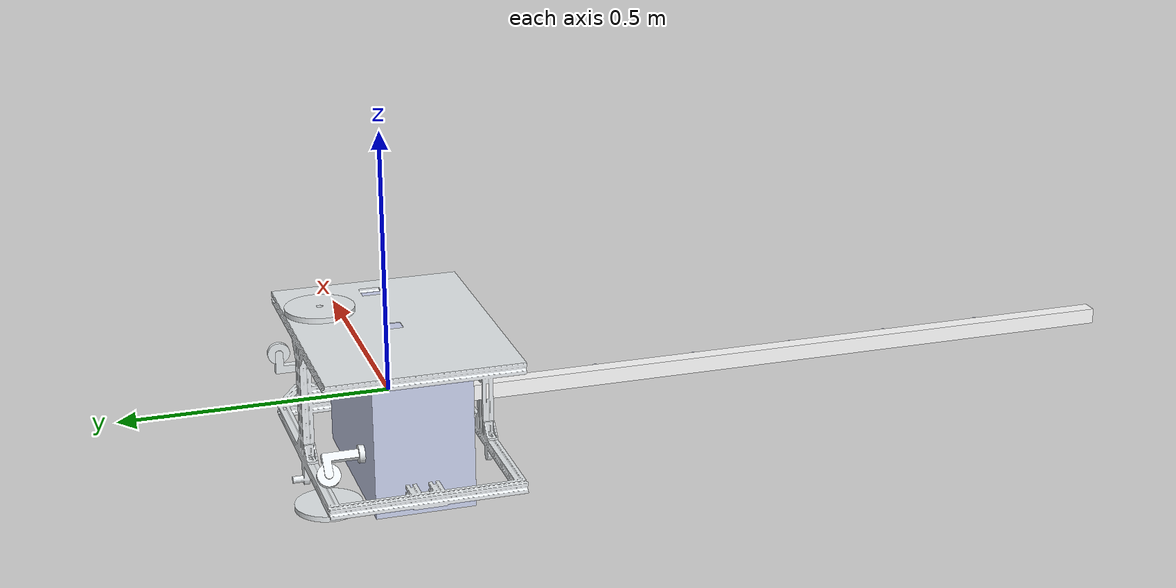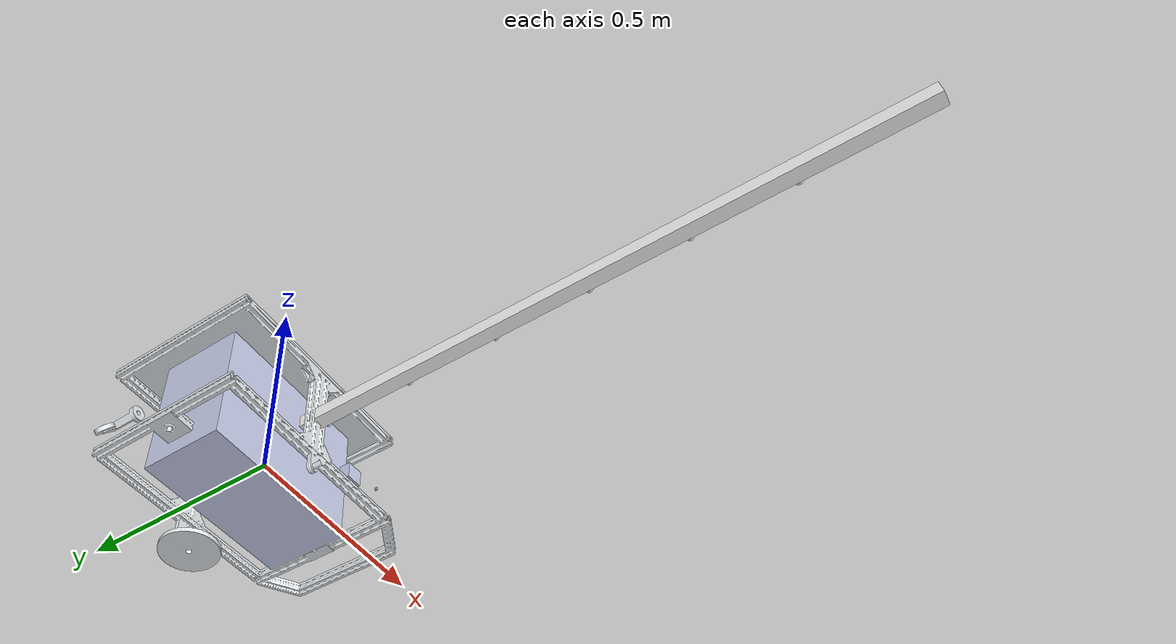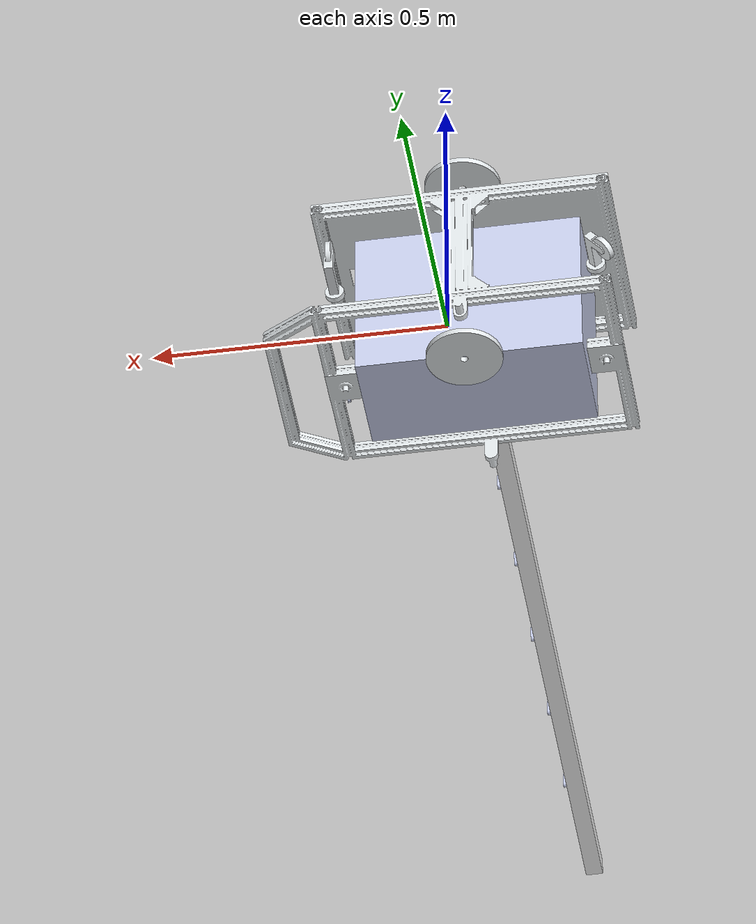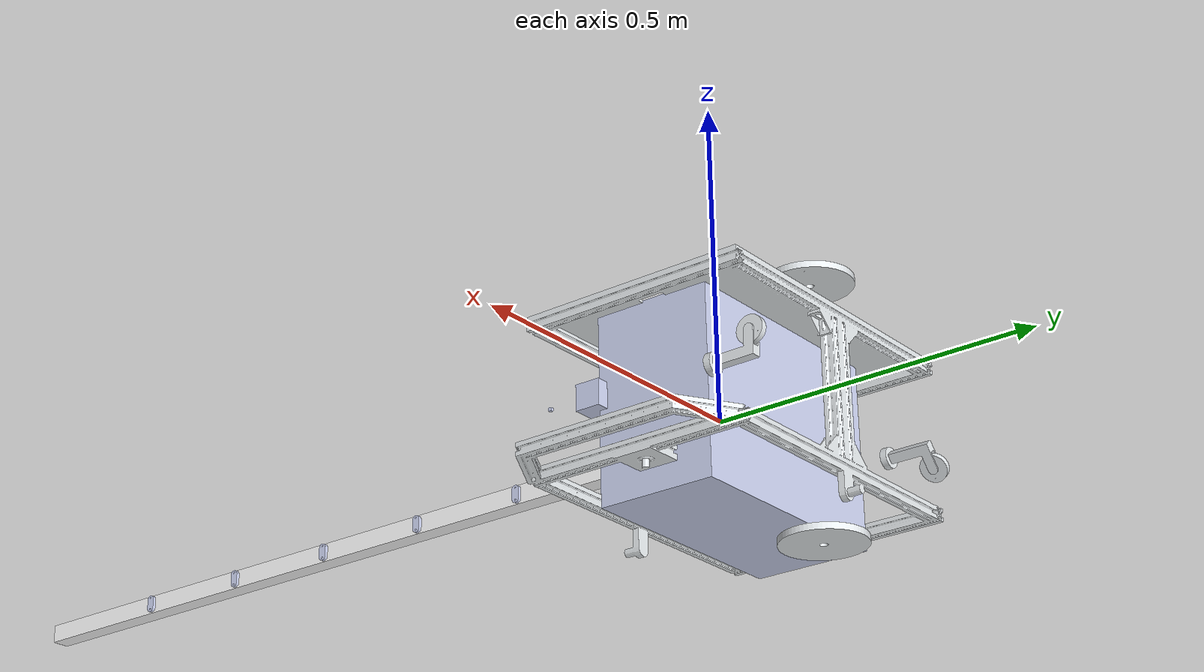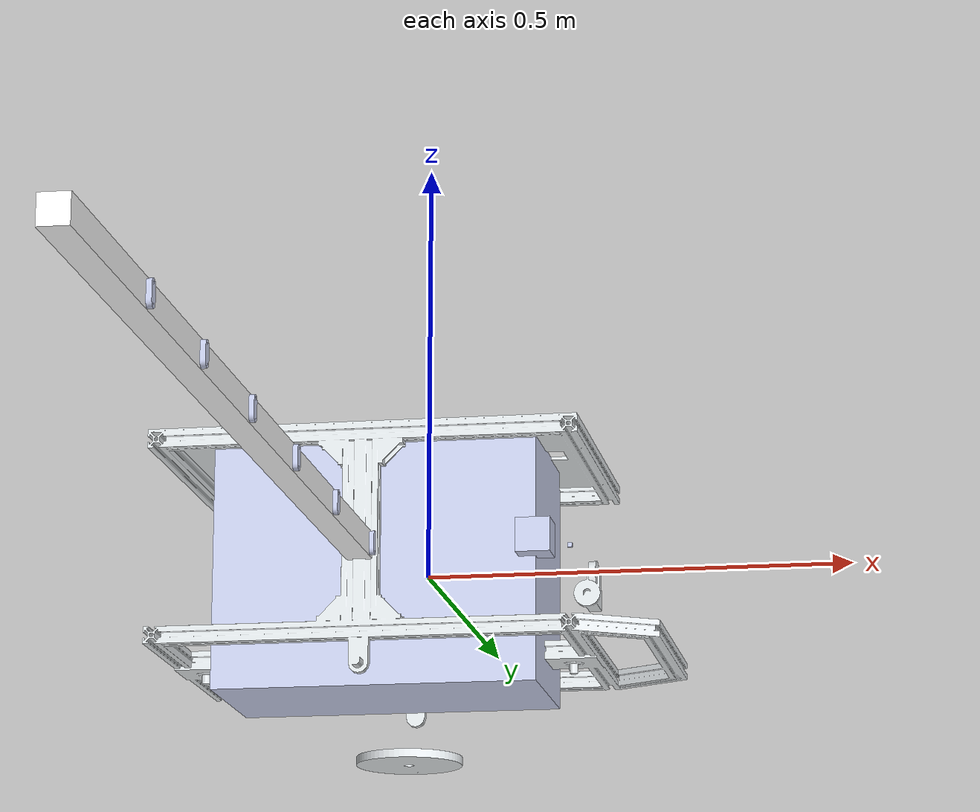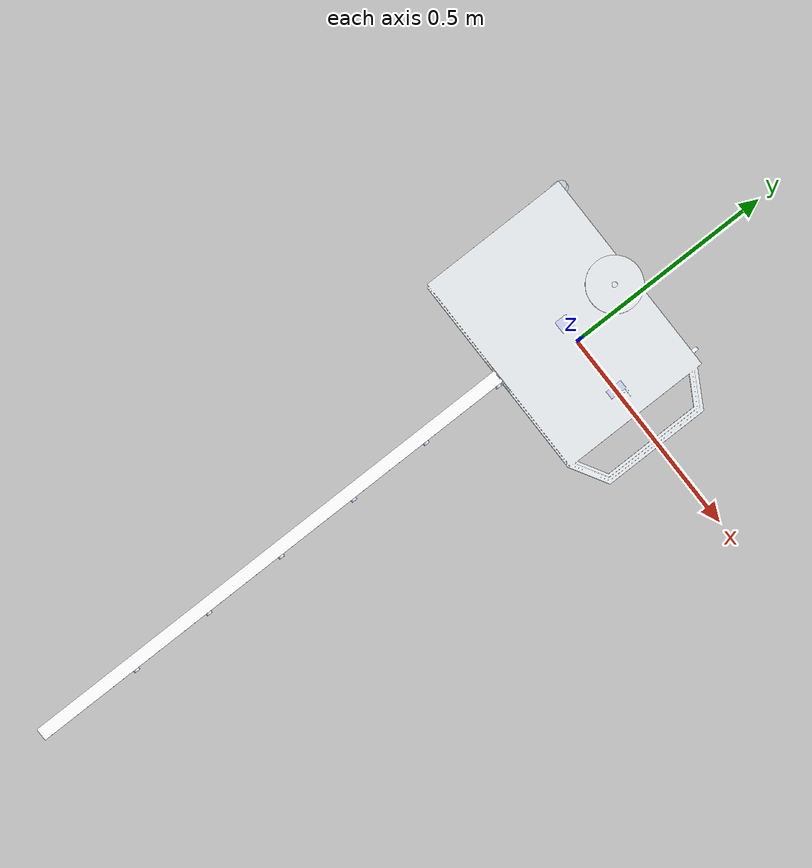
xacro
<?xml version='1.0'?>

<robot   name="GazeboV1" xmlns:xacro="http://www.ros.org/wiki/xacro">

  <xacro:include filename="$(find GazeboV0)/urdf/UVbot.gazebo" />
  <xacro:include filename="$(find GazeboV0)/urdf/macros.xacro" />
  <xacro:include filename="$(find GazeboV0)/urdf/materials.xacro" />
  <link
    name="Chassis">
    <inertial>
      <origin
        xyz="-0.034432 -0.049783 -0.0017009"
        rpy="0 0 0" />
      <mass
        value="4.6813" />
      <inertia
        ixx="0.13093"
        ixy="-0.010187"
        ixz="-1.0878E-07"
        iyy="0.19442"
        iyz="-6.3597E-06"
        izz="0.18221" />
    </inertial>
    <visual>
      <origin
        xyz="0 0 0"
        rpy="0 0 0" />
      <geometry>
        <mesh
          filename="package://GazeboV0/meshes/Chassis.STL" />
      </geometry>
      <material
        name="">
        <color
          rgba="0.89804 0.91765 0.92941 1" />
      </material>
    </visual>
    <collision>
      <origin
        xyz="0 0 0"
        rpy="0 0 0" />
      <geometry>
        <mesh
          filename="package://GazeboV0/meshes/Chassis.STL" />
      </geometry>
    </collision>
  </link>
  <link
    name="RightWheel">
    <inertial>
      <origin
        xyz="1.6653E-16 -2.0817E-17 0.0051"
        rpy="0 0 0" />
      <mass
        value="0.33861" />
      <inertia
        ixx="0.00034758"
        ixy="-7.2847E-20"
        ixz="9.6809E-18"
        iyy="0.00034758"
        iyz="4.2043E-19"
        izz="0.00068952" />
    </inertial>
    <visual>
      <origin
        xyz="0 0 0"
        rpy="0 0 0" />
      <geometry>
        <mesh
          filename="package://GazeboV0/meshes/RightWheel.STL" />
      </geometry>
      <material
        name="">
        <color
          rgba="0.89804 0.91765 0.92941 1" />
      </material>
    </visual>
    <collision>
      <origin
        xyz="0 0 0"
        rpy="0 0 0" />
      <geometry>
        <mesh
          filename="package://GazeboV0/meshes/RightWheel.STL" />
      </geometry>
    </collision>
  </link>
  <joint
    name="RightRevolute"
    type="continuous">
    <origin
      xyz="-0.0464879186474883 0.13117170540085 -0.191028392468994"
      rpy="3.14159265358979 0 1.5707963267949" />
    <parent
      link="Chassis" />
    <child
      link="RightWheel" />
    <axis
      xyz="0 0 1" />
    <dynamics
      damping="0"
      friction="0" />
  </joint>
  <link
    name="LeftWheel">
    <inertial>
      <origin
        xyz="-6.93889390390723E-17 -5.55111512312578E-17 -0.00510000000000457"
        rpy="0 0 0" />
      <mass
        value="0.338614058747035" />
      <inertia
        ixx="0.000347581051317554"
        ixy="0"
        ixz="5.18653076214745E-18"
        iyy="0.000347581051317554"
        iyz="2.0942724352016E-18"
        izz="0.000689518301963574" />
    </inertial>
    <visual>
      <origin
        xyz="0 0 0"
        rpy="0 0 0" />
      <geometry>
        <mesh
          filename="package://GazeboV0/meshes/LeftWheel.STL" />
      </geometry>
      <material
        name="">
        <color
          rgba="0.898039215686275 0.917647058823529 0.929411764705882 1" />
      </material>
    </visual>
    <collision>
      <origin
        xyz="0 0 0"
        rpy="0 0 0" />
      <geometry>
        <mesh
          filename="package://GazeboV0/meshes/LeftWheel.STL" />
      </geometry>
    </collision>
  </link>
  <joint
    name="LeftRevolute"
    type="continuous">
    <origin
      xyz="-0.0464879186474897 0.131171705400839 0.188167736746003"
      rpy="-3.14159265358976 0 0.415802035717092" />
    <parent
      link="Chassis" />
    <child
      link="LeftWheel" />
    <axis
      xyz="0 0 1" />
    <dynamics
      damping="0"
      friction="0" />
  </joint>
  <link
    name="FrontCastor">
    <inertial>
      <origin
        xyz="0.0030314 0.034563 -2.7756E-17"
        rpy="0 0 0" />
      <mass
        value="0.067153" />
      <inertia
        ixx="4.4926E-05"
        ixy="-6.705E-06"
        ixz="5.9566E-21"
        iyy="9.6191E-06"
        iyz="1.5989E-20"
        izz="4.9799E-05" />
    </inertial>
    <visual>
      <origin
        xyz="0 0 0"
        rpy="0 0 0" />
      <geometry>
        <mesh
          filename="package://GazeboV0/meshes/FrontCastor.STL" />
      </geometry>
      <material
        name="">
        <color
          rgba="0.89804 0.91765 0.92941 1" />
      </material>
    </visual>
    <collision>
      <origin
        xyz="0 0 0"
        rpy="0 0 0" />
      <geometry>
        <mesh
          filename="package://GazeboV0/meshes/FrontCastor.STL" />
      </geometry>
    </collision>
  </link>
  <joint
    name="FrontCastorRevolute"
    type="continuous">
    <origin
      xyz="0.17263668098028 0.106171705400847 -0.00173226325399095"
      rpy="3.14159265358979 -1.54598030035848 3.14159265358979" />
    <parent
      link="Chassis" />
    <child
      link="FrontCastor" />
    <axis
      xyz="0 1 0" />
    <dynamics
      damping="0"
      friction="0" />
  </joint>
  <link
    name="FrontCastorWheel">
    <inertial>
      <origin
        xyz="-1.38777878078145E-17 0 -6.38378239159465E-16"
        rpy="0 0 0" />
      <mass
        value="0.0317645176567402" />
      <inertia
        ixx="3.91504603938205E-06"
        ixy="4.2351647362715E-22"
        ixz="4.823176348906E-21"
        iyy="3.91504603938205E-06"
        iyz="-3.90529550879625E-21"
        izz="7.40108172021949E-06" />
    </inertial>
    <visual>
      <origin
        xyz="0 0 0"
        rpy="0 0 0" />
      <geometry>
        <mesh
          filename="package://GazeboV0/meshes/FrontCastorWheel.STL" />
      </geometry>
      <material
        name="">
        <color
          rgba="0.898039215686275 0.917647058823529 0.929411764705882 1" />
      </material>
    </visual>
    <collision>
      <origin
        xyz="0 0 0"
        rpy="0 0 0" />
      <geometry>
        <mesh
          filename="package://GazeboV0/meshes/FrontCastorWheel.STL" />
      </geometry>
    </collision>
  </link>
  <joint
    name="FrontCastorWheelRevolute"
    type="continuous">
    <origin
      xyz="0.0320000000000025 0.0674999999999988 0"
      rpy="0 0 -2.72865613261179" />
    <parent
      link="FrontCastor" />
    <child
      link="FrontCastorWheel" />
    <axis
      xyz="0 0 1" />
    <dynamics
      damping="0"
      friction="0" />
  </joint>
  <link
    name="RearCastor">
    <inertial>
      <origin
        xyz="0.00303144893180135 0.0345627416364439 2.77555756156289E-17"
        rpy="0 0 0" />
      <mass
        value="0.0671525104446696" />
      <inertia
        ixx="4.49259698602978E-05"
        ixy="-6.70501812215977E-06"
        ixz="2.83273439653558E-21"
        iyy="9.61913985679222E-06"
        iyz="-6.97283315371065E-21"
        izz="4.97992078191438E-05" />
    </inertial>
    <visual>
      <origin
        xyz="0 0 0"
        rpy="0 0 0" />
      <geometry>
        <mesh
          filename="package://GazeboV0/meshes/RearCastor.STL" />
      </geometry>
      <material
        name="">
        <color
          rgba="0.898039215686275 0.917647058823529 0.929411764705882 1" />
      </material>
    </visual>
    <collision>
      <origin
        xyz="0 0 0"
        rpy="0 0 0" />
      <geometry>
        <mesh
          filename="package://GazeboV0/meshes/RearCastor.STL" />
      </geometry>
    </collision>
  </link>
  <joint
    name="RearCastorRevolute"
    type="continuous">
    <origin
      xyz="-0.265612518275258 0.106171705400852 -0.00173226325399275"
      rpy="3.14159265358978 0.863215800991521 -3.14159265358979" />
    <parent
      link="Chassis" />
    <child
      link="RearCastor" />
    <axis
      xyz="0 1 0" />
    <dynamics
      damping="0"
      friction="0" />
  </joint>
  <link
    name="RearCastorWheel">
    <inertial>
      <origin
        xyz="0 -2.7756E-17 -1.3878E-16"
        rpy="0 0 0" />
      <mass
        value="0.031765" />
      <inertia
        ixx="3.915E-06"
        ixy="-1.0588E-22"
        ixz="2.54E-21"
        iyy="3.915E-06"
        iyz="7.4698E-22"
        izz="7.4011E-06" />
    </inertial>
    <visual>
      <origin
        xyz="0 0 0"
        rpy="0 0 0" />
      <geometry>
        <mesh
          filename="package://GazeboV0/meshes/RearCastorWheel.STL" />
      </geometry>
      <material
        name="">
        <color
          rgba="0.89804 0.91765 0.92941 1" />
      </material>
    </visual>
    <collision>
      <origin
        xyz="0 0 0"
        rpy="0 0 0" />
      <geometry>
        <mesh
          filename="package://GazeboV0/meshes/RearCastorWheel.STL" />
      </geometry>
    </collision>
  </link>
  <joint
    name="RearCastorWheelRevolute"
    type="continuous">
    <origin
      xyz="0.0319999999999975 0.0675000000000008 0"
      rpy="0 0 1.29966071100025" />
    <parent
      link="RearCastor" />
    <child
      link="RearCastorWheel" />
    <axis
      xyz="0 0 1" />
    <dynamics
      damping="0"
      friction="0" />
  </joint>
  <link
    name="Battery">
    <inertial>
      <origin
        xyz="6.8695E-16 0.0925 -7.5677E-17"
        rpy="0 0 0" />
      <mass
        value="17.512" />
      <inertia
        ixx="0.17268"
        ixy="1.0974E-15"
        ixz="6.6121E-16"
        iyy="0.33347"
        iyz="3.2497E-17"
        izz="0.26068" />
    </inertial>
    <visual>
      <origin
        xyz="0 0 0"
        rpy="0 0 0" />
      <geometry>
        <mesh
          filename="package://GazeboV0/meshes/Battery.STL" />
      </geometry>
      <material
        name="">
        <color
          rgba="0.79216 0.81961 0.93333 1" />
      </material>
    </visual>
    <collision>
      <origin
        xyz="0 0 0"
        rpy="0 0 0" />
      <geometry>
        <mesh
          filename="package://GazeboV0/meshes/Battery.STL" />
      </geometry>
    </collision>
  </link>
  <joint
    name="Fixed_Chassis_Battery"
    type="fixed">
    <origin
      xyz="-0.0464879186474911 -0.102828294599153 -0.00143226325399549"
      rpy="0 0 0" />
    <parent
      link="Chassis" />
    <child
      link="Battery" />
    <axis
      xyz="0 0 0" />
  </joint>

  <link name="LiDAR">
    <inertial>
      <origin
        xyz="0 0.0204 2.6021E-18"
        rpy="0 0 0" />
      <mass
        value="0.18025" />
      <inertia
        ixx="8.8373E-05"
        ixy="-2.6647E-37"
        ixz="-1.7334E-53"
        iyy="0.00012674"
        iyz="2.4957E-21"
        izz="8.8373E-05" />
    </inertial>
    <visual>
      <origin
        xyz="0 0 0"
        rpy="0 0 0" />
      <geometry>
        <mesh
          filename="package://GazeboV0/meshes/LiDAR.STL" />
      </geometry>
      <material
        name="">
        <color
          rgba="0.79216 0.81961 0.93333 1" />
      </material>
    </visual>
    <collision>
      <origin
        xyz="0 0 0"
        rpy="0 0 0" />
      <geometry>
        <mesh
          filename="package://GazeboV0/meshes/LiDAR.STL" />
      </geometry>
    </collision>
  </link>

  <joint name="Fixed_Battery_LiDAR" type="fixed">
    <origin
      xyz="0.143512081352509 -0.109028294599157 -0.00173226325399941"
      rpy="-1.57 -3.14 -3.14" />
    <parent link="Chassis" />
    <child link="LiDAR" />
    <axis
      xyz="0 0 1" />
  </joint>

  <link
    name="WoodRod"> <!--comment-->
    <inertial>
      <origin
        xyz="1.0842E-18 -5.1576E-06 0.25004"
        rpy="0 0 0" />
      <mass
        value="0.70171" />
      <inertia
        ixx="0.098881"
        ixy="-1.9823E-21"
        ixz="-8.8385E-20"
        iyy="0.098881"
        iyz="-3.6206E-07"
        izz="0.00010523" />
    </inertial>
    <visual>
      <origin
        xyz="0 0 0"
        rpy="0 0 0" />
      <geometry>
        <mesh
          filename="package://GazeboV0/meshes/WoodRod.STL" />
      </geometry>
      <material
        name="">
        <color
          rgba="1 1 1 1" />
      </material>
    </visual>
    <collision>
      <origin
        xyz="0 0 0"
        rpy="0 0 0" />
      <geometry>
        <mesh
          filename="package://GazeboV0/meshes/WoodRod.STL" />
      </geometry>
    </collision>
  </link>

  <joint    name="Fixed_Chassis_WoodRod"
    type="fixed">
    <origin
      xyz="-0.046487918647492 -0.14582829459916 -0.00173226325399934"
      rpy="1.5707963267949 -4.71 0" />
    <parent      link="Chassis" />
    <child
      link="WoodRod" />
    <axis
      xyz="0 0 0" />
  </joint>

  <link
    name="TBS1">
    <inertial>
      <origin
        xyz="-6.5052E-19 0 0.00275"
        rpy="0 0 0" />
      <mass
        value="0.0017387" />
      <inertia
        ixx="2.8124E-08"
        ixy="1.4974E-24"
        ixz="-6.7324E-24"
        iyy="9.5796E-08"
        iyz="-3.2191E-25"
        izz="1.1515E-07" />
    </inertial>
    <visual>
      <origin
        xyz="0 0 0"
        rpy="0 0 0" />
      <geometry>
        <mesh
          filename="package://GazeboV0/meshes/TBS1.STL" />
      </geometry>
      <material
        name="">
        <color
          rgba="0.79216 0.81961 0.93333 1" />
      </material>
    </visual>
    <collision>
      <origin
        xyz="0 0 0"
        rpy="0 0 0" />
      <geometry>
        <mesh
          filename="package://GazeboV0/meshes/TBS1.STL" />
      </geometry>
    </collision>
  </link>
  <joint
    name="Fixed_WoodRod_TBS1"
    type="fixed">
    <origin
      xyz="0 0.0205 1.05"
      rpy="1.5707963267949 0 0" />
    <parent
      link="WoodRod" />
    <child
      link="TBS1" />
    <axis
      xyz="0 0 0" />
  </joint>
  <link
    name="TBS2">
    <inertial>
      <origin
        xyz="-7.37257477290143E-18 -1.11022302462516E-16 0.00275"
        rpy="0 0 0" />
      <mass
        value="0.00173867551882196" />
      <inertia
        ixx="2.81242393072003E-08"
        ixy="7.59774513323698E-23"
        ixz="-4.65876414378988E-24"
        iyy="9.57958648484739E-08"
        iyz="-2.83810977432217E-25"
        izz="1.1515428174828E-07" />
    </inertial>
    <visual>
      <origin
        xyz="0 0 0"
        rpy="0 0 0" />
      <geometry>
        <mesh
          filename="package://GazeboV0/meshes/TBS2.STL" />
      </geometry>
      <material
        name="">
        <color
          rgba="0.792156862745098 0.819607843137255 0.933333333333333 1" />
      </material>
    </visual>
    <collision>
      <origin
        xyz="0 0 0"
        rpy="0 0 0" />
      <geometry>
        <mesh
          filename="package://GazeboV0/meshes/TBS2.STL" />
      </geometry>
    </collision>
  </link>
  <joint
    name="Fixed_WoodRod_TBS2"
    type="fixed">
    <origin
      xyz="0 0.0205 0.85"
      rpy="1.5707963267949 0 0" />
    <parent
      link="WoodRod" />
    <child
      link="TBS2" />
    <axis
      xyz="0 0 0" />
  </joint>
  <link
    name="TBS3">
    <inertial>
      <origin
        xyz="-4.3368E-19 0 0.00275"
        rpy="0 0 0" />
      <mass
        value="0.0017387" />
      <inertia
        ixx="2.8124E-08"
        ixy="1.4899E-22"
        ixz="-4.4224E-24"
        iyy="9.5796E-08"
        iyz="-6.4777E-25"
        izz="1.1515E-07" />
    </inertial>
    <visual>
      <origin
        xyz="0 0 0"
        rpy="0 0 0" />
      <geometry>
        <mesh
          filename="package://GazeboV0/meshes/TBS3.STL" />
      </geometry>
      <material
        name="">
        <color
          rgba="0.79216 0.81961 0.93333 1" />
      </material>
    </visual>
    <collision>
      <origin
        xyz="0 0 0"
        rpy="0 0 0" />
      <geometry>
        <mesh
          filename="package://GazeboV0/meshes/TBS3.STL" />
      </geometry>
    </collision>
  </link>
  <joint
    name="Fixed_WoodRod_TBS3"
    type="fixed">
    <origin
      xyz="0 0.0205 0.65"
      rpy="1.5707963267949 0 0" />
    <parent
      link="WoodRod" />
    <child
      link="TBS3" />
    <axis
      xyz="0 0 0" />
  </joint>
  <link
    name="TBS4">
    <inertial>
      <origin
        xyz="-6.72205346941013E-18 0 0.00275"
        rpy="0 0 0" />
      <mass
        value="0.00173867551882196" />
      <inertia
        ixx="2.81242393072003E-08"
        ixy="-8.25997223265049E-23"
        ixz="2.63973259082157E-24"
        iyy="9.57958648484738E-08"
        iyz="3.5053026174496E-25"
        izz="1.1515428174828E-07" />
    </inertial>
    <visual>
      <origin
        xyz="0 0 0"
        rpy="0 0 0" />
      <geometry>
        <mesh
          filename="package://GazeboV0/meshes/TBS4.STL" />
      </geometry>
      <material
        name="">
        <color
          rgba="0.792156862745098 0.819607843137255 0.933333333333333 1" />
      </material>
    </visual>
    <collision>
      <origin
        xyz="0 0 0"
        rpy="0 0 0" />
      <geometry>
        <mesh
          filename="package://GazeboV0/meshes/TBS4.STL" />
      </geometry>
    </collision>
  </link>
  <joint
    name="Fixed_WoodRod_TBS4"
    type="fixed">
    <origin
      xyz="0 0.015 0.45"
      rpy="-1.5707963267949 0 0" />
    <parent
      link="WoodRod" />
    <child
      link="TBS4" />
    <axis
      xyz="0 0 0" />
  </joint>
  <link
    name="TBS5">
    <inertial>
      <origin
        xyz="-1.47451495458029E-17 0 0.00275"
        rpy="0 0 0" />
      <mass
        value="0.00173867551882196" />
      <inertia
        ixx="2.81242393072001E-08"
        ixy="1.73224533978417E-22"
        ixz="1.43853779945553E-24"
        iyy="9.57958648484739E-08"
        iyz="4.26724520980307E-25"
        izz="1.1515428174828E-07" />
    </inertial>
    <visual>
      <origin
        xyz="0 0 0"
        rpy="0 0 0" />
      <geometry>
        <mesh
          filename="package://GazeboV0/meshes/TBS5.STL" />
      </geometry>
      <material
        name="">
        <color
          rgba="0.792156862745098 0.819607843137255 0.933333333333333 1" />
      </material>
    </visual>
    <collision>
      <origin
        xyz="0 0 0"
        rpy="0 0 0" />
      <geometry>
        <mesh
          filename="package://GazeboV0/meshes/TBS5.STL" />
      </geometry>
    </collision>
  </link>
  <joint
    name="Fixed_WoodRod_TBS5"
    type="fixed">
    <origin
      xyz="0 0.015 0.25"
      rpy="-1.5708 0 0" />
    <parent
      link="WoodRod" />
    <child
      link="TBS5" />
    <axis
      xyz="0 0 0" />
  </joint>
  <link
    name="TBS6">
    <inertial>
      <origin
        xyz="1.0842E-18 0 0.00275"
        rpy="0 0 0" />
      <mass
        value="0.0017387" />
      <inertia
        ixx="2.8124E-08"
        ixy="9.2938E-24"
        ixz="2.7747E-24"
        iyy="9.5796E-08"
        iyz="7.1449E-25"
        izz="1.1515E-07" />
    </inertial>
    <visual>
      <origin
        xyz="0 0 0"
        rpy="0 0 0" />
      <geometry>
        <mesh
          filename="package://GazeboV0/meshes/TBS6.STL" />
      </geometry>
      <material
        name="">
        <color
          rgba="0.79216 0.81961 0.93333 1" />
      </material>
    </visual>
    <collision>
      <origin
        xyz="0 0 0"
        rpy="0 0 0" />
      <geometry>
        <mesh
          filename="package://GazeboV0/meshes/TBS6.STL" />
      </geometry>
    </collision>
  </link>
  <joint
    name="Fixed_WoodRod_TBS6"
    type="fixed">
    <origin
      xyz="0 0.015 0.05"
      rpy="-1.5707963267949 0 0" />
    <parent
      link="WoodRod" />
    <child
      link="TBS6" />
    <axis
      xyz="0 0 0" />
  </joint>

  <link   name="Camera">
    <inertial>
      <origin
        xyz="-2.7756E-17 0.0025 0"
        rpy="0 0 0" />
      <mass
        value="0.000125" />
      <inertia
        ixx="5.2083E-10"
        ixy="4.0387E-26"
        ixz="-6.8733E-26"
        iyy="5.2083E-10"
        iyz="1.8522E-26"
        izz="5.2083E-10" />
    </inertial>
    <visual>
      <origin
        xyz="0 0 0"
        rpy="0 0 0" />
      <geometry>
        <mesh
          filename="package://GazeboV0/meshes/Camera.STL" />
      </geometry>
      <material
        name="">
        <color
          rgba="0.79216 0.81961 0.93333 1" />
      </material>
    </visual>
    <collision>
      <origin
        xyz="0 0 0"
        rpy="0 0 0" />
      <geometry>
        <mesh
          filename="package://GazeboV0/meshes/Camera.STL" />
      </geometry>
    </collision>
  </link>
  <joint name="Fixed_Chassis_Camera"  type="fixed">
    <origin
      xyz="0.190512081352507 -0.152328294599157 -0.00423226325400071"
      rpy="1.5707963267949 0 0" />
    <parent
      link="Chassis" />
    <child
      link="Camera" />
    <axis
      xyz="0 0 0" />
  </joint>
</robot>
